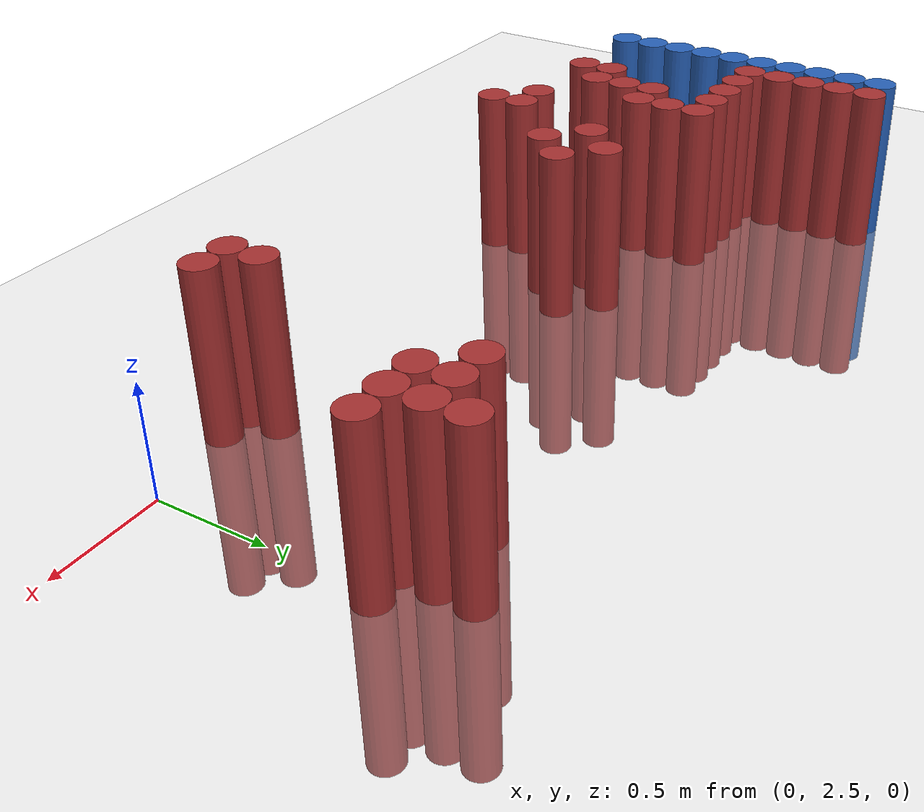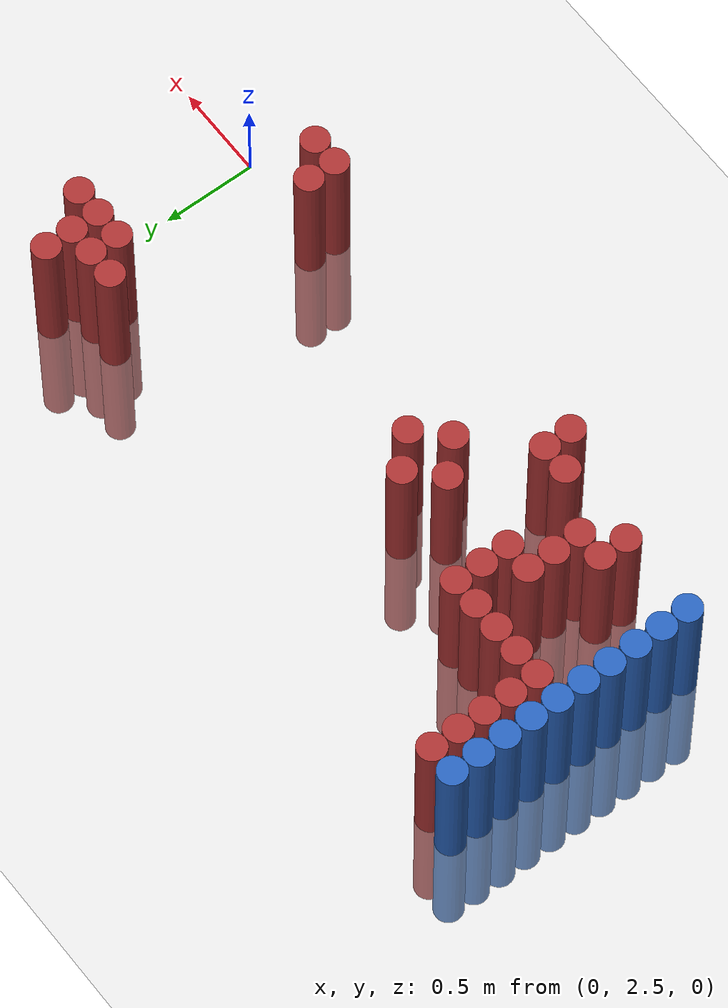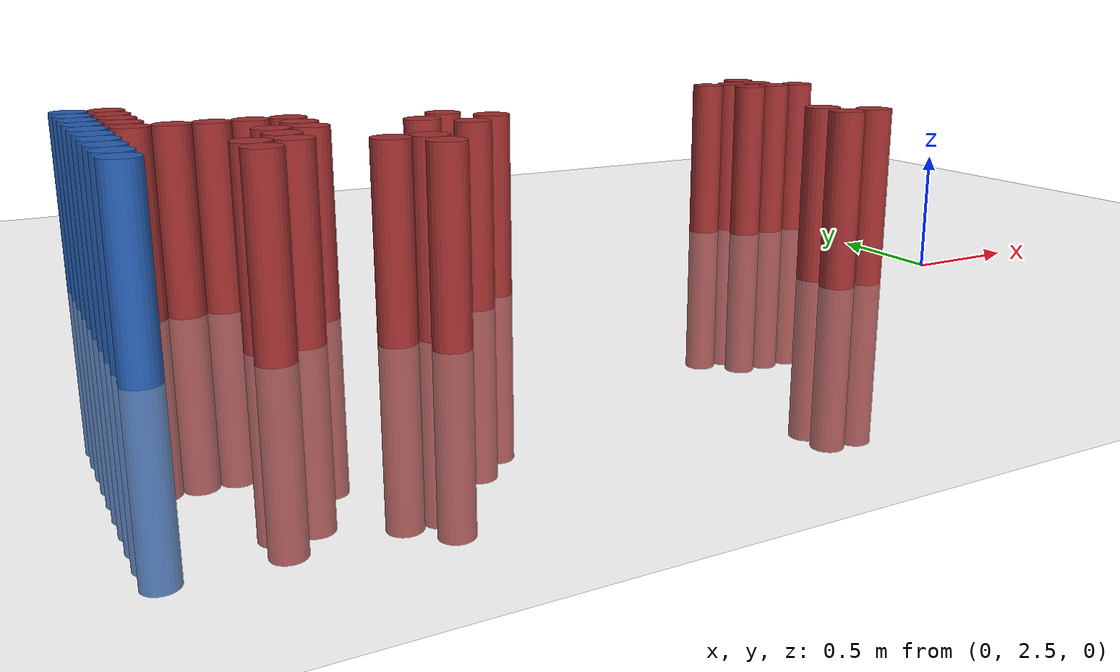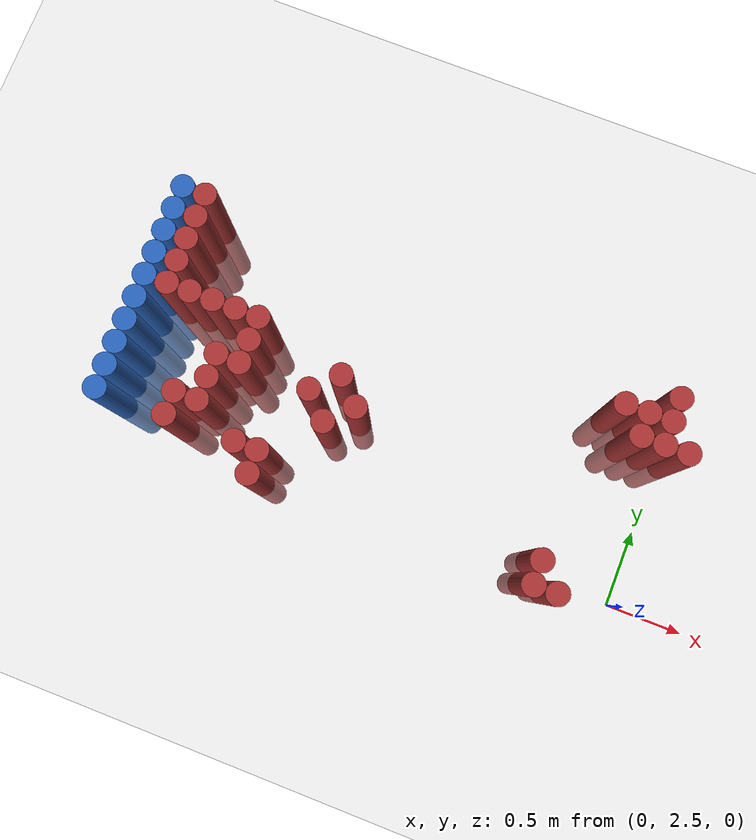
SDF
<sdf version="1.6">
 <world name="default">
  <model name="ground_plane">
   <static>1</static>
   <link name="link">
    <collision name="collision">
     <geometry><plane><normal>0 0 1</normal><size>100 100</size></plane></geometry>
     <surface><friction><ode><mu>100</mu><mu2>50</mu2></ode></friction></surface>
    </collision>
    <visual name="visual">
     <cast_shadows>0</cast_shadows>
     <geometry><plane><normal>0 0 1</normal><size>100 100</size></plane></geometry>
     <material>
      <script><uri>file://media/materials/scripts/gazebo.material</uri><name>Gazebo/Grey</name></script>
     </material>
    </visual>
   </link>
  </model>
  <model name="unit_cylinder_149">
   <static>1</static>
   <pose>-3.425000 2.575000 0.000000 0.000000 0.000000 0.000000</pose>
   <link name="link">
    <inertial>
     <mass>1</mass>
     <inertia><ixx>0.145833</ixx><ixy>0</ixy><ixz>0</ixz><iyy>0.145833</iyy><iyz>0</iyz><izz>0.125</izz></inertia>
    </inertial>
    <collision name="collision">
     <geometry><cylinder><radius>0.075000</radius><length>1.5</length></cylinder></geometry>
    </collision>
    <visual name="visual">
     <geometry><cylinder><radius>0.075000</radius><length>1.5</length></cylinder></geometry>
     <material>
      <ambient>0.152000 0.379000 0.720000 1</ambient>
      <diffuse>0.152000 0.379000 0.720000 1</diffuse>
     </material>
     <material>
      <script><name>Gazebo/Grey</name><uri>file://media/materials/scripts/gazebo.material</uri></script>
     </material>
    </visual>
   </link>
  </model>
  <model name="unit_cylinder_151">
   <static>1</static>
   <pose>-3.425000 2.725000 0.000000 0.000000 0.000000 0.000000</pose>
   <link name="link">
    <inertial>
     <mass>1</mass>
     <inertia><ixx>0.145833</ixx><ixy>0</ixy><ixz>0</ixz><iyy>0.145833</iyy><iyz>0</iyz><izz>0.125</izz></inertia>
    </inertial>
    <collision name="collision">
     <geometry><cylinder><radius>0.075000</radius><length>1.5</length></cylinder></geometry>
    </collision>
    <visual name="visual">
     <geometry><cylinder><radius>0.075000</radius><length>1.5</length></cylinder></geometry>
     <material>
      <ambient>0.152000 0.379000 0.720000 1</ambient>
      <diffuse>0.152000 0.379000 0.720000 1</diffuse>
     </material>
     <material>
      <script><name>Gazebo/Grey</name><uri>file://media/materials/scripts/gazebo.material</uri></script>
     </material>
    </visual>
   </link>
  </model>
  <model name="unit_cylinder_153">
   <static>1</static>
   <pose>-3.425000 2.875000 0.000000 0.000000 0.000000 0.000000</pose>
   <link name="link">
    <inertial>
     <mass>1</mass>
     <inertia><ixx>0.145833</ixx><ixy>0</ixy><ixz>0</ixz><iyy>0.145833</iyy><iyz>0</iyz><izz>0.125</izz></inertia>
    </inertial>
    <collision name="collision">
     <geometry><cylinder><radius>0.075000</radius><length>1.5</length></cylinder></geometry>
    </collision>
    <visual name="visual">
     <geometry><cylinder><radius>0.075000</radius><length>1.5</length></cylinder></geometry>
     <material>
      <ambient>0.152000 0.379000 0.720000 1</ambient>
      <diffuse>0.152000 0.379000 0.720000 1</diffuse>
     </material>
     <material>
      <script><name>Gazebo/Grey</name><uri>file://media/materials/scripts/gazebo.material</uri></script>
     </material>
    </visual>
   </link>
  </model>
  <model name="unit_cylinder_155">
   <static>1</static>
   <pose>-3.425000 3.025000 0.000000 0.000000 0.000000 0.000000</pose>
   <link name="link">
    <inertial>
     <mass>1</mass>
     <inertia><ixx>0.145833</ixx><ixy>0</ixy><ixz>0</ixz><iyy>0.145833</iyy><iyz>0</iyz><izz>0.125</izz></inertia>
    </inertial>
    <collision name="collision">
     <geometry><cylinder><radius>0.075000</radius><length>1.5</length></cylinder></geometry>
    </collision>
    <visual name="visual">
     <geometry><cylinder><radius>0.075000</radius><length>1.5</length></cylinder></geometry>
     <material>
      <ambient>0.152000 0.379000 0.720000 1</ambient>
      <diffuse>0.152000 0.379000 0.720000 1</diffuse>
     </material>
     <material>
      <script><name>Gazebo/Grey</name><uri>file://media/materials/scripts/gazebo.material</uri></script>
     </material>
    </visual>
   </link>
  </model>
  <model name="unit_cylinder_157">
   <static>1</static>
   <pose>-3.425000 3.175000 0.000000 0.000000 0.000000 0.000000</pose>
   <link name="link">
    <inertial>
     <mass>1</mass>
     <inertia><ixx>0.145833</ixx><ixy>0</ixy><ixz>0</ixz><iyy>0.145833</iyy><iyz>0</iyz><izz>0.125</izz></inertia>
    </inertial>
    <collision name="collision">
     <geometry><cylinder><radius>0.075000</radius><length>1.5</length></cylinder></geometry>
    </collision>
    <visual name="visual">
     <geometry><cylinder><radius>0.075000</radius><length>1.5</length></cylinder></geometry>
     <material>
      <ambient>0.152000 0.379000 0.720000 1</ambient>
      <diffuse>0.152000 0.379000 0.720000 1</diffuse>
     </material>
     <material>
      <script><name>Gazebo/Grey</name><uri>file://media/materials/scripts/gazebo.material</uri></script>
     </material>
    </visual>
   </link>
  </model>
  <model name="unit_cylinder_159">
   <static>1</static>
   <pose>-3.425000 3.325000 0.000000 0.000000 0.000000 0.000000</pose>
   <link name="link">
    <inertial>
     <mass>1</mass>
     <inertia><ixx>0.145833</ixx><ixy>0</ixy><ixz>0</ixz><iyy>0.145833</iyy><iyz>0</iyz><izz>0.125</izz></inertia>
    </inertial>
    <collision name="collision">
     <geometry><cylinder><radius>0.075000</radius><length>1.5</length></cylinder></geometry>
    </collision>
    <visual name="visual">
     <geometry><cylinder><radius>0.075000</radius><length>1.5</length></cylinder></geometry>
     <material>
      <ambient>0.152000 0.379000 0.720000 1</ambient>
      <diffuse>0.152000 0.379000 0.720000 1</diffuse>
     </material>
     <material>
      <script><name>Gazebo/Grey</name><uri>file://media/materials/scripts/gazebo.material</uri></script>
     </material>
    </visual>
   </link>
  </model>
  <model name="unit_cylinder_161">
   <static>1</static>
   <pose>-3.425000 3.475000 0.000000 0.000000 0.000000 0.000000</pose>
   <link name="link">
    <inertial>
     <mass>1</mass>
     <inertia><ixx>0.145833</ixx><ixy>0</ixy><ixz>0</ixz><iyy>0.145833</iyy><iyz>0</iyz><izz>0.125</izz></inertia>
    </inertial>
    <collision name="collision">
     <geometry><cylinder><radius>0.075000</radius><length>1.5</length></cylinder></geometry>
    </collision>
    <visual name="visual">
     <geometry><cylinder><radius>0.075000</radius><length>1.5</length></cylinder></geometry>
     <material>
      <ambient>0.152000 0.379000 0.720000 1</ambient>
      <diffuse>0.152000 0.379000 0.720000 1</diffuse>
     </material>
     <material>
      <script><name>Gazebo/Grey</name><uri>file://media/materials/scripts/gazebo.material</uri></script>
     </material>
    </visual>
   </link>
  </model>
  <model name="unit_cylinder_163">
   <static>1</static>
   <pose>-3.425000 3.625000 0.000000 0.000000 0.000000 0.000000</pose>
   <link name="link">
    <inertial>
     <mass>1</mass>
     <inertia><ixx>0.145833</ixx><ixy>0</ixy><ixz>0</ixz><iyy>0.145833</iyy><iyz>0</iyz><izz>0.125</izz></inertia>
    </inertial>
    <collision name="collision">
     <geometry><cylinder><radius>0.075000</radius><length>1.5</length></cylinder></geometry>
    </collision>
    <visual name="visual">
     <geometry><cylinder><radius>0.075000</radius><length>1.5</length></cylinder></geometry>
     <material>
      <ambient>0.152000 0.379000 0.720000 1</ambient>
      <diffuse>0.152000 0.379000 0.720000 1</diffuse>
     </material>
     <material>
      <script><name>Gazebo/Grey</name><uri>file://media/materials/scripts/gazebo.material</uri></script>
     </material>
    </visual>
   </link>
  </model>
  <model name="unit_cylinder_165">
   <static>1</static>
   <pose>-3.425000 3.775000 0.000000 0.000000 0.000000 0.000000</pose>
   <link name="link">
    <inertial>
     <mass>1</mass>
     <inertia><ixx>0.145833</ixx><ixy>0</ixy><ixz>0</ixz><iyy>0.145833</iyy><iyz>0</iyz><izz>0.125</izz></inertia>
    </inertial>
    <collision name="collision">
     <geometry><cylinder><radius>0.075000</radius><length>1.5</length></cylinder></geometry>
    </collision>
    <visual name="visual">
     <geometry><cylinder><radius>0.075000</radius><length>1.5</length></cylinder></geometry>
     <material>
      <ambient>0.152000 0.379000 0.720000 1</ambient>
      <diffuse>0.152000 0.379000 0.720000 1</diffuse>
     </material>
     <material>
      <script><name>Gazebo/Grey</name><uri>file://media/materials/scripts/gazebo.material</uri></script>
     </material>
    </visual>
   </link>
  </model>
  <model name="unit_cylinder_167">
   <static>1</static>
   <pose>-3.425000 3.925000 0.000000 0.000000 0.000000 0.000000</pose>
   <link name="link">
    <inertial>
     <mass>1</mass>
     <inertia><ixx>0.145833</ixx><ixy>0</ixy><ixz>0</ixz><iyy>0.145833</iyy><iyz>0</iyz><izz>0.125</izz></inertia>
    </inertial>
    <collision name="collision">
     <geometry><cylinder><radius>0.075000</radius><length>1.5</length></cylinder></geometry>
    </collision>
    <visual name="visual">
     <geometry><cylinder><radius>0.075000</radius><length>1.5</length></cylinder></geometry>
     <material>
      <ambient>0.152000 0.379000 0.720000 1</ambient>
      <diffuse>0.152000 0.379000 0.720000 1</diffuse>
     </material>
     <material>
      <script><name>Gazebo/Grey</name><uri>file://media/materials/scripts/gazebo.material</uri></script>
     </material>
    </visual>
   </link>
  </model>
  <model name="unit_cylinder_238">
   <static>1</static>
   <pose>-3.425000 2.575000 0.000000 0.000000 0.000000 0.000000</pose>
   <link name="link">
    <inertial>
     <mass>1</mass>
     <inertia><ixx>0.145833</ixx><ixy>0</ixy><ixz>0</ixz><iyy>0.145833</iyy><iyz>0</iyz><izz>0.125</izz></inertia>
    </inertial>
    <collision name="collision">
     <geometry><cylinder><radius>0.075000</radius><length>1.5</length></cylinder></geometry>
    </collision>
    <visual name="visual">
     <geometry><cylinder><radius>0.075000</radius><length>1.5</length></cylinder></geometry>
     <material>
      <ambient>0.152000 0.379000 0.720000 1</ambient>
      <diffuse>0.152000 0.379000 0.720000 1</diffuse>
     </material>
     <material>
      <script><name>Gazebo/Grey</name><uri>file://media/materials/scripts/gazebo.material</uri></script>
     </material>
    </visual>
   </link>
  </model>
  <model name="unit_cylinder_239">
   <static>1</static>
   <pose>-3.425000 2.725000 0.000000 0.000000 0.000000 0.000000</pose>
   <link name="link">
    <inertial>
     <mass>1</mass>
     <inertia><ixx>0.145833</ixx><ixy>0</ixy><ixz>0</ixz><iyy>0.145833</iyy><iyz>0</iyz><izz>0.125</izz></inertia>
    </inertial>
    <collision name="collision">
     <geometry><cylinder><radius>0.075000</radius><length>1.5</length></cylinder></geometry>
    </collision>
    <visual name="visual">
     <geometry><cylinder><radius>0.075000</radius><length>1.5</length></cylinder></geometry>
     <material>
      <ambient>0.152000 0.379000 0.720000 1</ambient>
      <diffuse>0.152000 0.379000 0.720000 1</diffuse>
     </material>
     <material>
      <script><name>Gazebo/Grey</name><uri>file://media/materials/scripts/gazebo.material</uri></script>
     </material>
    </visual>
   </link>
  </model>
  <model name="unit_cylinder_240">
   <static>1</static>
   <pose>-3.425000 2.875000 0.000000 0.000000 0.000000 0.000000</pose>
   <link name="link">
    <inertial>
     <mass>1</mass>
     <inertia><ixx>0.145833</ixx><ixy>0</ixy><ixz>0</ixz><iyy>0.145833</iyy><iyz>0</iyz><izz>0.125</izz></inertia>
    </inertial>
    <collision name="collision">
     <geometry><cylinder><radius>0.075000</radius><length>1.5</length></cylinder></geometry>
    </collision>
    <visual name="visual">
     <geometry><cylinder><radius>0.075000</radius><length>1.5</length></cylinder></geometry>
     <material>
      <ambient>0.152000 0.379000 0.720000 1</ambient>
      <diffuse>0.152000 0.379000 0.720000 1</diffuse>
     </material>
     <material>
      <script><name>Gazebo/Grey</name><uri>file://media/materials/scripts/gazebo.material</uri></script>
     </material>
    </visual>
   </link>
  </model>
  <model name="unit_cylinder_241">
   <static>1</static>
   <pose>-3.425000 3.025000 0.000000 0.000000 0.000000 0.000000</pose>
   <link name="link">
    <inertial>
     <mass>1</mass>
     <inertia><ixx>0.145833</ixx><ixy>0</ixy><ixz>0</ixz><iyy>0.145833</iyy><iyz>0</iyz><izz>0.125</izz></inertia>
    </inertial>
    <collision name="collision">
     <geometry><cylinder><radius>0.075000</radius><length>1.5</length></cylinder></geometry>
    </collision>
    <visual name="visual">
     <geometry><cylinder><radius>0.075000</radius><length>1.5</length></cylinder></geometry>
     <material>
      <ambient>0.152000 0.379000 0.720000 1</ambient>
      <diffuse>0.152000 0.379000 0.720000 1</diffuse>
     </material>
     <material>
      <script><name>Gazebo/Grey</name><uri>file://media/materials/scripts/gazebo.material</uri></script>
     </material>
    </visual>
   </link>
  </model>
  <model name="unit_cylinder_242">
   <static>1</static>
   <pose>-3.425000 3.175000 0.000000 0.000000 0.000000 0.000000</pose>
   <link name="link">
    <inertial>
     <mass>1</mass>
     <inertia><ixx>0.145833</ixx><ixy>0</ixy><ixz>0</ixz><iyy>0.145833</iyy><iyz>0</iyz><izz>0.125</izz></inertia>
    </inertial>
    <collision name="collision">
     <geometry><cylinder><radius>0.075000</radius><length>1.5</length></cylinder></geometry>
    </collision>
    <visual name="visual">
     <geometry><cylinder><radius>0.075000</radius><length>1.5</length></cylinder></geometry>
     <material>
      <ambient>0.152000 0.379000 0.720000 1</ambient>
      <diffuse>0.152000 0.379000 0.720000 1</diffuse>
     </material>
     <material>
      <script><name>Gazebo/Grey</name><uri>file://media/materials/scripts/gazebo.material</uri></script>
     </material>
    </visual>
   </link>
  </model>
  <model name="unit_cylinder_243">
   <static>1</static>
   <pose>-3.425000 3.325000 0.000000 0.000000 0.000000 0.000000</pose>
   <link name="link">
    <inertial>
     <mass>1</mass>
     <inertia><ixx>0.145833</ixx><ixy>0</ixy><ixz>0</ixz><iyy>0.145833</iyy><iyz>0</iyz><izz>0.125</izz></inertia>
    </inertial>
    <collision name="collision">
     <geometry><cylinder><radius>0.075000</radius><length>1.5</length></cylinder></geometry>
    </collision>
    <visual name="visual">
     <geometry><cylinder><radius>0.075000</radius><length>1.5</length></cylinder></geometry>
     <material>
      <ambient>0.152000 0.379000 0.720000 1</ambient>
      <diffuse>0.152000 0.379000 0.720000 1</diffuse>
     </material>
     <material>
      <script><name>Gazebo/Grey</name><uri>file://media/materials/scripts/gazebo.material</uri></script>
     </material>
    </visual>
   </link>
  </model>
  <model name="unit_cylinder_244">
   <static>1</static>
   <pose>-3.425000 3.475000 0.000000 0.000000 0.000000 0.000000</pose>
   <link name="link">
    <inertial>
     <mass>1</mass>
     <inertia><ixx>0.145833</ixx><ixy>0</ixy><ixz>0</ixz><iyy>0.145833</iyy><iyz>0</iyz><izz>0.125</izz></inertia>
    </inertial>
    <collision name="collision">
     <geometry><cylinder><radius>0.075000</radius><length>1.5</length></cylinder></geometry>
    </collision>
    <visual name="visual">
     <geometry><cylinder><radius>0.075000</radius><length>1.5</length></cylinder></geometry>
     <material>
      <ambient>0.152000 0.379000 0.720000 1</ambient>
      <diffuse>0.152000 0.379000 0.720000 1</diffuse>
     </material>
     <material>
      <script><name>Gazebo/Grey</name><uri>file://media/materials/scripts/gazebo.material</uri></script>
     </material>
    </visual>
   </link>
  </model>
  <model name="unit_cylinder_245">
   <static>1</static>
   <pose>-3.425000 3.625000 0.000000 0.000000 0.000000 0.000000</pose>
   <link name="link">
    <inertial>
     <mass>1</mass>
     <inertia><ixx>0.145833</ixx><ixy>0</ixy><ixz>0</ixz><iyy>0.145833</iyy><iyz>0</iyz><izz>0.125</izz></inertia>
    </inertial>
    <collision name="collision">
     <geometry><cylinder><radius>0.075000</radius><length>1.5</length></cylinder></geometry>
    </collision>
    <visual name="visual">
     <geometry><cylinder><radius>0.075000</radius><length>1.5</length></cylinder></geometry>
     <material>
      <ambient>0.152000 0.379000 0.720000 1</ambient>
      <diffuse>0.152000 0.379000 0.720000 1</diffuse>
     </material>
     <material>
      <script><name>Gazebo/Grey</name><uri>file://media/materials/scripts/gazebo.material</uri></script>
     </material>
    </visual>
   </link>
  </model>
  <model name="unit_cylinder_246">
   <static>1</static>
   <pose>-3.425000 3.775000 0.000000 0.000000 0.000000 0.000000</pose>
   <link name="link">
    <inertial>
     <mass>1</mass>
     <inertia><ixx>0.145833</ixx><ixy>0</ixy><ixz>0</ixz><iyy>0.145833</iyy><iyz>0</iyz><izz>0.125</izz></inertia>
    </inertial>
    <collision name="collision">
     <geometry><cylinder><radius>0.075000</radius><length>1.5</length></cylinder></geometry>
    </collision>
    <visual name="visual">
     <geometry><cylinder><radius>0.075000</radius><length>1.5</length></cylinder></geometry>
     <material>
      <ambient>0.152000 0.379000 0.720000 1</ambient>
      <diffuse>0.152000 0.379000 0.720000 1</diffuse>
     </material>
     <material>
      <script><name>Gazebo/Grey</name><uri>file://media/materials/scripts/gazebo.material</uri></script>
     </material>
    </visual>
   </link>
  </model>
  <model name="unit_cylinder_247">
   <static>1</static>
   <pose>-3.425000 3.925000 0.000000 0.000000 0.000000 0.000000</pose>
   <link name="link">
    <inertial>
     <mass>1</mass>
     <inertia><ixx>0.145833</ixx><ixy>0</ixy><ixz>0</ixz><iyy>0.145833</iyy><iyz>0</iyz><izz>0.125</izz></inertia>
    </inertial>
    <collision name="collision">
     <geometry><cylinder><radius>0.075000</radius><length>1.5</length></cylinder></geometry>
    </collision>
    <visual name="visual">
     <geometry><cylinder><radius>0.075000</radius><length>1.5</length></cylinder></geometry>
     <material>
      <ambient>0.152000 0.379000 0.720000 1</ambient>
      <diffuse>0.152000 0.379000 0.720000 1</diffuse>
     </material>
     <material>
      <script><name>Gazebo/Grey</name><uri>file://media/materials/scripts/gazebo.material</uri></script>
     </material>
    </visual>
   </link>
  </model>
  <model name="unit_cylinder_275">
   <static>1</static>
   <pose>-3.275000 3.325000 0.000000 0.000000 0.000000 0.000000</pose>
   <link name="link">
    <inertial>
     <mass>1</mass>
     <inertia><ixx>0.145833</ixx><ixy>0</ixy><ixz>0</ixz><iyy>0.145833</iyy><iyz>0</iyz><izz>0.125</izz></inertia>
    </inertial>
    <collision name="collision">
     <geometry><cylinder><radius>0.075000</radius><length>1.5</length></cylinder></geometry>
    </collision>
    <visual name="visual">
     <geometry><cylinder><radius>0.075000</radius><length>1.5</length></cylinder></geometry>
     <material>
      <ambient>0.648000 0.192000 0.192000 1</ambient>
      <diffuse>0.648000 0.192000 0.192000 1</diffuse>
     </material>
     <material>
      <script><name>Gazebo/Grey</name><uri>file://media/materials/scripts/gazebo.material</uri></script>
     </material>
    </visual>
   </link>
  </model>
  <model name="unit_cylinder_276">
   <static>1</static>
   <pose>-3.275000 3.475000 0.000000 0.000000 0.000000 0.000000</pose>
   <link name="link">
    <inertial>
     <mass>1</mass>
     <inertia><ixx>0.145833</ixx><ixy>0</ixy><ixz>0</ixz><iyy>0.145833</iyy><iyz>0</iyz><izz>0.125</izz></inertia>
    </inertial>
    <collision name="collision">
     <geometry><cylinder><radius>0.075000</radius><length>1.5</length></cylinder></geometry>
    </collision>
    <visual name="visual">
     <geometry><cylinder><radius>0.075000</radius><length>1.5</length></cylinder></geometry>
     <material>
      <ambient>0.648000 0.192000 0.192000 1</ambient>
      <diffuse>0.648000 0.192000 0.192000 1</diffuse>
     </material>
     <material>
      <script><name>Gazebo/Grey</name><uri>file://media/materials/scripts/gazebo.material</uri></script>
     </material>
    </visual>
   </link>
  </model>
  <model name="unit_cylinder_277">
   <static>1</static>
   <pose>-3.275000 3.625000 0.000000 0.000000 0.000000 0.000000</pose>
   <link name="link">
    <inertial>
     <mass>1</mass>
     <inertia><ixx>0.145833</ixx><ixy>0</ixy><ixz>0</ixz><iyy>0.145833</iyy><iyz>0</iyz><izz>0.125</izz></inertia>
    </inertial>
    <collision name="collision">
     <geometry><cylinder><radius>0.075000</radius><length>1.5</length></cylinder></geometry>
    </collision>
    <visual name="visual">
     <geometry><cylinder><radius>0.075000</radius><length>1.5</length></cylinder></geometry>
     <material>
      <ambient>0.648000 0.192000 0.192000 1</ambient>
      <diffuse>0.648000 0.192000 0.192000 1</diffuse>
     </material>
     <material>
      <script><name>Gazebo/Grey</name><uri>file://media/materials/scripts/gazebo.material</uri></script>
     </material>
    </visual>
   </link>
  </model>
  <model name="unit_cylinder_278">
   <static>1</static>
   <pose>-3.275000 3.775000 0.000000 0.000000 0.000000 0.000000</pose>
   <link name="link">
    <inertial>
     <mass>1</mass>
     <inertia><ixx>0.145833</ixx><ixy>0</ixy><ixz>0</ixz><iyy>0.145833</iyy><iyz>0</iyz><izz>0.125</izz></inertia>
    </inertial>
    <collision name="collision">
     <geometry><cylinder><radius>0.075000</radius><length>1.5</length></cylinder></geometry>
    </collision>
    <visual name="visual">
     <geometry><cylinder><radius>0.075000</radius><length>1.5</length></cylinder></geometry>
     <material>
      <ambient>0.648000 0.192000 0.192000 1</ambient>
      <diffuse>0.648000 0.192000 0.192000 1</diffuse>
     </material>
     <material>
      <script><name>Gazebo/Grey</name><uri>file://media/materials/scripts/gazebo.material</uri></script>
     </material>
    </visual>
   </link>
  </model>
  <model name="unit_cylinder_279">
   <static>1</static>
   <pose>-3.275000 3.925000 0.000000 0.000000 0.000000 0.000000</pose>
   <link name="link">
    <inertial>
     <mass>1</mass>
     <inertia><ixx>0.145833</ixx><ixy>0</ixy><ixz>0</ixz><iyy>0.145833</iyy><iyz>0</iyz><izz>0.125</izz></inertia>
    </inertial>
    <collision name="collision">
     <geometry><cylinder><radius>0.075000</radius><length>1.5</length></cylinder></geometry>
    </collision>
    <visual name="visual">
     <geometry><cylinder><radius>0.075000</radius><length>1.5</length></cylinder></geometry>
     <material>
      <ambient>0.648000 0.192000 0.192000 1</ambient>
      <diffuse>0.648000 0.192000 0.192000 1</diffuse>
     </material>
     <material>
      <script><name>Gazebo/Grey</name><uri>file://media/materials/scripts/gazebo.material</uri></script>
     </material>
    </visual>
   </link>
  </model>
  <model name="unit_cylinder_291">
   <static>1</static>
   <pose>-3.125000 3.325000 0.000000 0.000000 0.000000 0.000000</pose>
   <link name="link">
    <inertial>
     <mass>1</mass>
     <inertia><ixx>0.145833</ixx><ixy>0</ixy><ixz>0</ixz><iyy>0.145833</iyy><iyz>0</iyz><izz>0.125</izz></inertia>
    </inertial>
    <collision name="collision">
     <geometry><cylinder><radius>0.075000</radius><length>1.5</length></cylinder></geometry>
    </collision>
    <visual name="visual">
     <geometry><cylinder><radius>0.075000</radius><length>1.5</length></cylinder></geometry>
     <material>
      <ambient>0.648000 0.192000 0.192000 1</ambient>
      <diffuse>0.648000 0.192000 0.192000 1</diffuse>
     </material>
     <material>
      <script><name>Gazebo/Grey</name><uri>file://media/materials/scripts/gazebo.material</uri></script>
     </material>
    </visual>
   </link>
  </model>
  <model name="unit_cylinder_299">
   <static>1</static>
   <pose>-2.975000 2.575000 0.000000 0.000000 0.000000 0.000000</pose>
   <link name="link">
    <inertial>
     <mass>1</mass>
     <inertia><ixx>0.145833</ixx><ixy>0</ixy><ixz>0</ixz><iyy>0.145833</iyy><iyz>0</iyz><izz>0.125</izz></inertia>
    </inertial>
    <collision name="collision">
     <geometry><cylinder><radius>0.075000</radius><length>1.5</length></cylinder></geometry>
    </collision>
    <visual name="visual">
     <geometry><cylinder><radius>0.075000</radius><length>1.5</length></cylinder></geometry>
     <material>
      <ambient>0.648000 0.192000 0.192000 1</ambient>
      <diffuse>0.648000 0.192000 0.192000 1</diffuse>
     </material>
     <material>
      <script><name>Gazebo/Grey</name><uri>file://media/materials/scripts/gazebo.material</uri></script>
     </material>
    </visual>
   </link>
  </model>
  <model name="unit_cylinder_300">
   <static>1</static>
   <pose>-2.975000 2.725000 0.000000 0.000000 0.000000 0.000000</pose>
   <link name="link">
    <inertial>
     <mass>1</mass>
     <inertia><ixx>0.145833</ixx><ixy>0</ixy><ixz>0</ixz><iyy>0.145833</iyy><iyz>0</iyz><izz>0.125</izz></inertia>
    </inertial>
    <collision name="collision">
     <geometry><cylinder><radius>0.075000</radius><length>1.5</length></cylinder></geometry>
    </collision>
    <visual name="visual">
     <geometry><cylinder><radius>0.075000</radius><length>1.5</length></cylinder></geometry>
     <material>
      <ambient>0.648000 0.192000 0.192000 1</ambient>
      <diffuse>0.648000 0.192000 0.192000 1</diffuse>
     </material>
     <material>
      <script><name>Gazebo/Grey</name><uri>file://media/materials/scripts/gazebo.material</uri></script>
     </material>
    </visual>
   </link>
  </model>
  <model name="unit_cylinder_301">
   <static>1</static>
   <pose>-2.975000 3.325000 0.000000 0.000000 0.000000 0.000000</pose>
   <link name="link">
    <inertial>
     <mass>1</mass>
     <inertia><ixx>0.145833</ixx><ixy>0</ixy><ixz>0</ixz><iyy>0.145833</iyy><iyz>0</iyz><izz>0.125</izz></inertia>
    </inertial>
    <collision name="collision">
     <geometry><cylinder><radius>0.075000</radius><length>1.5</length></cylinder></geometry>
    </collision>
    <visual name="visual">
     <geometry><cylinder><radius>0.075000</radius><length>1.5</length></cylinder></geometry>
     <material>
      <ambient>0.648000 0.192000 0.192000 1</ambient>
      <diffuse>0.648000 0.192000 0.192000 1</diffuse>
     </material>
     <material>
      <script><name>Gazebo/Grey</name><uri>file://media/materials/scripts/gazebo.material</uri></script>
     </material>
    </visual>
   </link>
  </model>
  <model name="unit_cylinder_310">
   <static>1</static>
   <pose>-2.825000 2.725000 0.000000 0.000000 0.000000 0.000000</pose>
   <link name="link">
    <inertial>
     <mass>1</mass>
     <inertia><ixx>0.145833</ixx><ixy>0</ixy><ixz>0</ixz><iyy>0.145833</iyy><iyz>0</iyz><izz>0.125</izz></inertia>
    </inertial>
    <collision name="collision">
     <geometry><cylinder><radius>0.075000</radius><length>1.5</length></cylinder></geometry>
    </collision>
    <visual name="visual">
     <geometry><cylinder><radius>0.075000</radius><length>1.5</length></cylinder></geometry>
     <material>
      <ambient>0.648000 0.192000 0.192000 1</ambient>
      <diffuse>0.648000 0.192000 0.192000 1</diffuse>
     </material>
     <material>
      <script><name>Gazebo/Grey</name><uri>file://media/materials/scripts/gazebo.material</uri></script>
     </material>
    </visual>
   </link>
  </model>
  <model name="unit_cylinder_311">
   <static>1</static>
   <pose>-2.825000 2.875000 0.000000 0.000000 0.000000 0.000000</pose>
   <link name="link">
    <inertial>
     <mass>1</mass>
     <inertia><ixx>0.145833</ixx><ixy>0</ixy><ixz>0</ixz><iyy>0.145833</iyy><iyz>0</iyz><izz>0.125</izz></inertia>
    </inertial>
    <collision name="collision">
     <geometry><cylinder><radius>0.075000</radius><length>1.5</length></cylinder></geometry>
    </collision>
    <visual name="visual">
     <geometry><cylinder><radius>0.075000</radius><length>1.5</length></cylinder></geometry>
     <material>
      <ambient>0.648000 0.192000 0.192000 1</ambient>
      <diffuse>0.648000 0.192000 0.192000 1</diffuse>
     </material>
     <material>
      <script><name>Gazebo/Grey</name><uri>file://media/materials/scripts/gazebo.material</uri></script>
     </material>
    </visual>
   </link>
  </model>
  <model name="unit_cylinder_312">
   <static>1</static>
   <pose>-2.825000 3.025000 0.000000 0.000000 0.000000 0.000000</pose>
   <link name="link">
    <inertial>
     <mass>1</mass>
     <inertia><ixx>0.145833</ixx><ixy>0</ixy><ixz>0</ixz><iyy>0.145833</iyy><iyz>0</iyz><izz>0.125</izz></inertia>
    </inertial>
    <collision name="collision">
     <geometry><cylinder><radius>0.075000</radius><length>1.5</length></cylinder></geometry>
    </collision>
    <visual name="visual">
     <geometry><cylinder><radius>0.075000</radius><length>1.5</length></cylinder></geometry>
     <material>
      <ambient>0.648000 0.192000 0.192000 1</ambient>
      <diffuse>0.648000 0.192000 0.192000 1</diffuse>
     </material>
     <material>
      <script><name>Gazebo/Grey</name><uri>file://media/materials/scripts/gazebo.material</uri></script>
     </material>
    </visual>
   </link>
  </model>
  <model name="unit_cylinder_313">
   <static>1</static>
   <pose>-2.825000 3.325000 0.000000 0.000000 0.000000 0.000000</pose>
   <link name="link">
    <inertial>
     <mass>1</mass>
     <inertia><ixx>0.145833</ixx><ixy>0</ixy><ixz>0</ixz><iyy>0.145833</iyy><iyz>0</iyz><izz>0.125</izz></inertia>
    </inertial>
    <collision name="collision">
     <geometry><cylinder><radius>0.075000</radius><length>1.5</length></cylinder></geometry>
    </collision>
    <visual name="visual">
     <geometry><cylinder><radius>0.075000</radius><length>1.5</length></cylinder></geometry>
     <material>
      <ambient>0.648000 0.192000 0.192000 1</ambient>
      <diffuse>0.648000 0.192000 0.192000 1</diffuse>
     </material>
     <material>
      <script><name>Gazebo/Grey</name><uri>file://media/materials/scripts/gazebo.material</uri></script>
     </material>
    </visual>
   </link>
  </model>
  <model name="unit_cylinder_317">
   <static>1</static>
   <pose>-2.675000 3.025000 0.000000 0.000000 0.000000 0.000000</pose>
   <link name="link">
    <inertial>
     <mass>1</mass>
     <inertia><ixx>0.145833</ixx><ixy>0</ixy><ixz>0</ixz><iyy>0.145833</iyy><iyz>0</iyz><izz>0.125</izz></inertia>
    </inertial>
    <collision name="collision">
     <geometry><cylinder><radius>0.075000</radius><length>1.5</length></cylinder></geometry>
    </collision>
    <visual name="visual">
     <geometry><cylinder><radius>0.075000</radius><length>1.5</length></cylinder></geometry>
     <material>
      <ambient>0.648000 0.192000 0.192000 1</ambient>
      <diffuse>0.648000 0.192000 0.192000 1</diffuse>
     </material>
     <material>
      <script><name>Gazebo/Grey</name><uri>file://media/materials/scripts/gazebo.material</uri></script>
     </material>
    </visual>
   </link>
  </model>
  <model name="unit_cylinder_318">
   <static>1</static>
   <pose>-2.675000 3.175000 0.000000 0.000000 0.000000 0.000000</pose>
   <link name="link">
    <inertial>
     <mass>1</mass>
     <inertia><ixx>0.145833</ixx><ixy>0</ixy><ixz>0</ixz><iyy>0.145833</iyy><iyz>0</iyz><izz>0.125</izz></inertia>
    </inertial>
    <collision name="collision">
     <geometry><cylinder><radius>0.075000</radius><length>1.5</length></cylinder></geometry>
    </collision>
    <visual name="visual">
     <geometry><cylinder><radius>0.075000</radius><length>1.5</length></cylinder></geometry>
     <material>
      <ambient>0.648000 0.192000 0.192000 1</ambient>
      <diffuse>0.648000 0.192000 0.192000 1</diffuse>
     </material>
     <material>
      <script><name>Gazebo/Grey</name><uri>file://media/materials/scripts/gazebo.material</uri></script>
     </material>
    </visual>
   </link>
  </model>
  <model name="unit_cylinder_319">
   <static>1</static>
   <pose>-2.675000 3.325000 0.000000 0.000000 0.000000 0.000000</pose>
   <link name="link">
    <inertial>
     <mass>1</mass>
     <inertia><ixx>0.145833</ixx><ixy>0</ixy><ixz>0</ixz><iyy>0.145833</iyy><iyz>0</iyz><izz>0.125</izz></inertia>
    </inertial>
    <collision name="collision">
     <geometry><cylinder><radius>0.075000</radius><length>1.5</length></cylinder></geometry>
    </collision>
    <visual name="visual">
     <geometry><cylinder><radius>0.075000</radius><length>1.5</length></cylinder></geometry>
     <material>
      <ambient>0.648000 0.192000 0.192000 1</ambient>
      <diffuse>0.648000 0.192000 0.192000 1</diffuse>
     </material>
     <material>
      <script><name>Gazebo/Grey</name><uri>file://media/materials/scripts/gazebo.material</uri></script>
     </material>
    </visual>
   </link>
  </model>
  <model name="unit_cylinder_322">
   <static>1</static>
   <pose>-2.525000 2.575000 0.000000 0.000000 0.000000 0.000000</pose>
   <link name="link">
    <inertial>
     <mass>1</mass>
     <inertia><ixx>0.145833</ixx><ixy>0</ixy><ixz>0</ixz><iyy>0.145833</iyy><iyz>0</iyz><izz>0.125</izz></inertia>
    </inertial>
    <collision name="collision">
     <geometry><cylinder><radius>0.075000</radius><length>1.5</length></cylinder></geometry>
    </collision>
    <visual name="visual">
     <geometry><cylinder><radius>0.075000</radius><length>1.5</length></cylinder></geometry>
     <material>
      <ambient>0.648000 0.192000 0.192000 1</ambient>
      <diffuse>0.648000 0.192000 0.192000 1</diffuse>
     </material>
     <material>
      <script><name>Gazebo/Grey</name><uri>file://media/materials/scripts/gazebo.material</uri></script>
     </material>
    </visual>
   </link>
  </model>
  <model name="unit_cylinder_328">
   <static>1</static>
   <pose>-2.375000 2.425000 0.000000 0.000000 0.000000 0.000000</pose>
   <link name="link">
    <inertial>
     <mass>1</mass>
     <inertia><ixx>0.145833</ixx><ixy>0</ixy><ixz>0</ixz><iyy>0.145833</iyy><iyz>0</iyz><izz>0.125</izz></inertia>
    </inertial>
    <collision name="collision">
     <geometry><cylinder><radius>0.075000</radius><length>1.5</length></cylinder></geometry>
    </collision>
    <visual name="visual">
     <geometry><cylinder><radius>0.075000</radius><length>1.5</length></cylinder></geometry>
     <material>
      <ambient>0.648000 0.192000 0.192000 1</ambient>
      <diffuse>0.648000 0.192000 0.192000 1</diffuse>
     </material>
     <material>
      <script><name>Gazebo/Grey</name><uri>file://media/materials/scripts/gazebo.material</uri></script>
     </material>
    </visual>
   </link>
  </model>
  <model name="unit_cylinder_329">
   <static>1</static>
   <pose>-2.375000 2.575000 0.000000 0.000000 0.000000 0.000000</pose>
   <link name="link">
    <inertial>
     <mass>1</mass>
     <inertia><ixx>0.145833</ixx><ixy>0</ixy><ixz>0</ixz><iyy>0.145833</iyy><iyz>0</iyz><izz>0.125</izz></inertia>
    </inertial>
    <collision name="collision">
     <geometry><cylinder><radius>0.075000</radius><length>1.5</length></cylinder></geometry>
    </collision>
    <visual name="visual">
     <geometry><cylinder><radius>0.075000</radius><length>1.5</length></cylinder></geometry>
     <material>
      <ambient>0.648000 0.192000 0.192000 1</ambient>
      <diffuse>0.648000 0.192000 0.192000 1</diffuse>
     </material>
     <material>
      <script><name>Gazebo/Grey</name><uri>file://media/materials/scripts/gazebo.material</uri></script>
     </material>
    </visual>
   </link>
  </model>
  <model name="unit_cylinder_337">
   <static>1</static>
   <pose>-2.225000 3.025000 0.000000 0.000000 0.000000 0.000000</pose>
   <link name="link">
    <inertial>
     <mass>1</mass>
     <inertia><ixx>0.145833</ixx><ixy>0</ixy><ixz>0</ixz><iyy>0.145833</iyy><iyz>0</iyz><izz>0.125</izz></inertia>
    </inertial>
    <collision name="collision">
     <geometry><cylinder><radius>0.075000</radius><length>1.5</length></cylinder></geometry>
    </collision>
    <visual name="visual">
     <geometry><cylinder><radius>0.075000</radius><length>1.5</length></cylinder></geometry>
     <material>
      <ambient>0.648000 0.192000 0.192000 1</ambient>
      <diffuse>0.648000 0.192000 0.192000 1</diffuse>
     </material>
     <material>
      <script><name>Gazebo/Grey</name><uri>file://media/materials/scripts/gazebo.material</uri></script>
     </material>
    </visual>
   </link>
  </model>
  <model name="unit_cylinder_345">
   <static>1</static>
   <pose>-2.075000 2.875000 0.000000 0.000000 0.000000 0.000000</pose>
   <link name="link">
    <inertial>
     <mass>1</mass>
     <inertia><ixx>0.145833</ixx><ixy>0</ixy><ixz>0</ixz><iyy>0.145833</iyy><iyz>0</iyz><izz>0.125</izz></inertia>
    </inertial>
    <collision name="collision">
     <geometry><cylinder><radius>0.075000</radius><length>1.5</length></cylinder></geometry>
    </collision>
    <visual name="visual">
     <geometry><cylinder><radius>0.075000</radius><length>1.5</length></cylinder></geometry>
     <material>
      <ambient>0.648000 0.192000 0.192000 1</ambient>
      <diffuse>0.648000 0.192000 0.192000 1</diffuse>
     </material>
     <material>
      <script><name>Gazebo/Grey</name><uri>file://media/materials/scripts/gazebo.material</uri></script>
     </material>
    </visual>
   </link>
  </model>
  <model name="unit_cylinder_346">
   <static>1</static>
   <pose>-2.075000 3.175000 0.000000 0.000000 0.000000 0.000000</pose>
   <link name="link">
    <inertial>
     <mass>1</mass>
     <inertia><ixx>0.145833</ixx><ixy>0</ixy><ixz>0</ixz><iyy>0.145833</iyy><iyz>0</iyz><izz>0.125</izz></inertia>
    </inertial>
    <collision name="collision">
     <geometry><cylinder><radius>0.075000</radius><length>1.5</length></cylinder></geometry>
    </collision>
    <visual name="visual">
     <geometry><cylinder><radius>0.075000</radius><length>1.5</length></cylinder></geometry>
     <material>
      <ambient>0.648000 0.192000 0.192000 1</ambient>
      <diffuse>0.648000 0.192000 0.192000 1</diffuse>
     </material>
     <material>
      <script><name>Gazebo/Grey</name><uri>file://media/materials/scripts/gazebo.material</uri></script>
     </material>
    </visual>
   </link>
  </model>
  <model name="unit_cylinder_358">
   <static>1</static>
   <pose>-1.925000 3.025000 0.000000 0.000000 0.000000 0.000000</pose>
   <link name="link">
    <inertial>
     <mass>1</mass>
     <inertia><ixx>0.145833</ixx><ixy>0</ixy><ixz>0</ixz><iyy>0.145833</iyy><iyz>0</iyz><izz>0.125</izz></inertia>
    </inertial>
    <collision name="collision">
     <geometry><cylinder><radius>0.075000</radius><length>1.5</length></cylinder></geometry>
    </collision>
    <visual name="visual">
     <geometry><cylinder><radius>0.075000</radius><length>1.5</length></cylinder></geometry>
     <material>
      <ambient>0.648000 0.192000 0.192000 1</ambient>
      <diffuse>0.648000 0.192000 0.192000 1</diffuse>
     </material>
     <material>
      <script><name>Gazebo/Grey</name><uri>file://media/materials/scripts/gazebo.material</uri></script>
     </material>
    </visual>
   </link>
  </model>
  <model name="unit_cylinder_405">
   <static>1</static>
   <pose>-0.575000 2.425000 0.000000 0.000000 0.000000 0.000000</pose>
   <link name="link">
    <inertial>
     <mass>1</mass>
     <inertia><ixx>0.145833</ixx><ixy>0</ixy><ixz>0</ixz><iyy>0.145833</iyy><iyz>0</iyz><izz>0.125</izz></inertia>
    </inertial>
    <collision name="collision">
     <geometry><cylinder><radius>0.075000</radius><length>1.5</length></cylinder></geometry>
    </collision>
    <visual name="visual">
     <geometry><cylinder><radius>0.075000</radius><length>1.5</length></cylinder></geometry>
     <material>
      <ambient>0.648000 0.192000 0.192000 1</ambient>
      <diffuse>0.648000 0.192000 0.192000 1</diffuse>
     </material>
     <material>
      <script><name>Gazebo/Grey</name><uri>file://media/materials/scripts/gazebo.material</uri></script>
     </material>
    </visual>
   </link>
  </model>
  <model name="unit_cylinder_406">
   <static>1</static>
   <pose>-0.575000 2.575000 0.000000 0.000000 0.000000 0.000000</pose>
   <link name="link">
    <inertial>
     <mass>1</mass>
     <inertia><ixx>0.145833</ixx><ixy>0</ixy><ixz>0</ixz><iyy>0.145833</iyy><iyz>0</iyz><izz>0.125</izz></inertia>
    </inertial>
    <collision name="collision">
     <geometry><cylinder><radius>0.075000</radius><length>1.5</length></cylinder></geometry>
    </collision>
    <visual name="visual">
     <geometry><cylinder><radius>0.075000</radius><length>1.5</length></cylinder></geometry>
     <material>
      <ambient>0.648000 0.192000 0.192000 1</ambient>
      <diffuse>0.648000 0.192000 0.192000 1</diffuse>
     </material>
     <material>
      <script><name>Gazebo/Grey</name><uri>file://media/materials/scripts/gazebo.material</uri></script>
     </material>
    </visual>
   </link>
  </model>
  <model name="unit_cylinder_409">
   <static>1</static>
   <pose>-0.425000 2.425000 0.000000 0.000000 0.000000 0.000000</pose>
   <link name="link">
    <inertial>
     <mass>1</mass>
     <inertia><ixx>0.145833</ixx><ixy>0</ixy><ixz>0</ixz><iyy>0.145833</iyy><iyz>0</iyz><izz>0.125</izz></inertia>
    </inertial>
    <collision name="collision">
     <geometry><cylinder><radius>0.075000</radius><length>1.5</length></cylinder></geometry>
    </collision>
    <visual name="visual">
     <geometry><cylinder><radius>0.075000</radius><length>1.5</length></cylinder></geometry>
     <material>
      <ambient>0.648000 0.192000 0.192000 1</ambient>
      <diffuse>0.648000 0.192000 0.192000 1</diffuse>
     </material>
     <material>
      <script><name>Gazebo/Grey</name><uri>file://media/materials/scripts/gazebo.material</uri></script>
     </material>
    </visual>
   </link>
  </model>
  <model name="unit_cylinder_410">
   <static>1</static>
   <pose>-0.425000 3.625000 0.000000 0.000000 0.000000 0.000000</pose>
   <link name="link">
    <inertial>
     <mass>1</mass>
     <inertia><ixx>0.145833</ixx><ixy>0</ixy><ixz>0</ixz><iyy>0.145833</iyy><iyz>0</iyz><izz>0.125</izz></inertia>
    </inertial>
    <collision name="collision">
     <geometry><cylinder><radius>0.075000</radius><length>1.5</length></cylinder></geometry>
    </collision>
    <visual name="visual">
     <geometry><cylinder><radius>0.075000</radius><length>1.5</length></cylinder></geometry>
     <material>
      <ambient>0.648000 0.192000 0.192000 1</ambient>
      <diffuse>0.648000 0.192000 0.192000 1</diffuse>
     </material>
     <material>
      <script><name>Gazebo/Grey</name><uri>file://media/materials/scripts/gazebo.material</uri></script>
     </material>
    </visual>
   </link>
  </model>
  <model name="unit_cylinder_412">
   <static>1</static>
   <pose>-0.275000 3.475000 0.000000 0.000000 0.000000 0.000000</pose>
   <link name="link">
    <inertial>
     <mass>1</mass>
     <inertia><ixx>0.145833</ixx><ixy>0</ixy><ixz>0</ixz><iyy>0.145833</iyy><iyz>0</iyz><izz>0.125</izz></inertia>
    </inertial>
    <collision name="collision">
     <geometry><cylinder><radius>0.075000</radius><length>1.5</length></cylinder></geometry>
    </collision>
    <visual name="visual">
     <geometry><cylinder><radius>0.075000</radius><length>1.5</length></cylinder></geometry>
     <material>
      <ambient>0.648000 0.192000 0.192000 1</ambient>
      <diffuse>0.648000 0.192000 0.192000 1</diffuse>
     </material>
     <material>
      <script><name>Gazebo/Grey</name><uri>file://media/materials/scripts/gazebo.material</uri></script>
     </material>
    </visual>
   </link>
  </model>
  <model name="unit_cylinder_413">
   <static>1</static>
   <pose>-0.275000 3.625000 0.000000 0.000000 0.000000 0.000000</pose>
   <link name="link">
    <inertial>
     <mass>1</mass>
     <inertia><ixx>0.145833</ixx><ixy>0</ixy><ixz>0</ixz><iyy>0.145833</iyy><iyz>0</iyz><izz>0.125</izz></inertia>
    </inertial>
    <collision name="collision">
     <geometry><cylinder><radius>0.075000</radius><length>1.5</length></cylinder></geometry>
    </collision>
    <visual name="visual">
     <geometry><cylinder><radius>0.075000</radius><length>1.5</length></cylinder></geometry>
     <material>
      <ambient>0.648000 0.192000 0.192000 1</ambient>
      <diffuse>0.648000 0.192000 0.192000 1</diffuse>
     </material>
     <material>
      <script><name>Gazebo/Grey</name><uri>file://media/materials/scripts/gazebo.material</uri></script>
     </material>
    </visual>
   </link>
  </model>
  <model name="unit_cylinder_423">
   <static>1</static>
   <pose>-0.125000 3.475000 0.000000 0.000000 0.000000 0.000000</pose>
   <link name="link">
    <inertial>
     <mass>1</mass>
     <inertia><ixx>0.145833</ixx><ixy>0</ixy><ixz>0</ixz><iyy>0.145833</iyy><iyz>0</iyz><izz>0.125</izz></inertia>
    </inertial>
    <collision name="collision">
     <geometry><cylinder><radius>0.075000</radius><length>1.5</length></cylinder></geometry>
    </collision>
    <visual name="visual">
     <geometry><cylinder><radius>0.075000</radius><length>1.5</length></cylinder></geometry>
     <material>
      <ambient>0.648000 0.192000 0.192000 1</ambient>
      <diffuse>0.648000 0.192000 0.192000 1</diffuse>
     </material>
     <material>
      <script><name>Gazebo/Grey</name><uri>file://media/materials/scripts/gazebo.material</uri></script>
     </material>
    </visual>
   </link>
  </model>
  <model name="unit_cylinder_424">
   <static>1</static>
   <pose>-0.125000 3.625000 0.000000 0.000000 0.000000 0.000000</pose>
   <link name="link">
    <inertial>
     <mass>1</mass>
     <inertia><ixx>0.145833</ixx><ixy>0</ixy><ixz>0</ixz><iyy>0.145833</iyy><iyz>0</iyz><izz>0.125</izz></inertia>
    </inertial>
    <collision name="collision">
     <geometry><cylinder><radius>0.075000</radius><length>1.5</length></cylinder></geometry>
    </collision>
    <visual name="visual">
     <geometry><cylinder><radius>0.075000</radius><length>1.5</length></cylinder></geometry>
     <material>
      <ambient>0.648000 0.192000 0.192000 1</ambient>
      <diffuse>0.648000 0.192000 0.192000 1</diffuse>
     </material>
     <material>
      <script><name>Gazebo/Grey</name><uri>file://media/materials/scripts/gazebo.material</uri></script>
     </material>
    </visual>
   </link>
  </model>
  <model name="unit_cylinder_425">
   <static>1</static>
   <pose>-0.125000 3.775000 0.000000 0.000000 0.000000 0.000000</pose>
   <link name="link">
    <inertial>
     <mass>1</mass>
     <inertia><ixx>0.145833</ixx><ixy>0</ixy><ixz>0</ixz><iyy>0.145833</iyy><iyz>0</iyz><izz>0.125</izz></inertia>
    </inertial>
    <collision name="collision">
     <geometry><cylinder><radius>0.075000</radius><length>1.5</length></cylinder></geometry>
    </collision>
    <visual name="visual">
     <geometry><cylinder><radius>0.075000</radius><length>1.5</length></cylinder></geometry>
     <material>
      <ambient>0.648000 0.192000 0.192000 1</ambient>
      <diffuse>0.648000 0.192000 0.192000 1</diffuse>
     </material>
     <material>
      <script><name>Gazebo/Grey</name><uri>file://media/materials/scripts/gazebo.material</uri></script>
     </material>
    </visual>
   </link>
  </model>
  <model name="unit_cylinder_434">
   <static>1</static>
   <pose>0.025000 3.475000 0.000000 0.000000 0.000000 0.000000</pose>
   <link name="link">
    <inertial>
     <mass>1</mass>
     <inertia><ixx>0.145833</ixx><ixy>0</ixy><ixz>0</ixz><iyy>0.145833</iyy><iyz>0</iyz><izz>0.125</izz></inertia>
    </inertial>
    <collision name="collision">
     <geometry><cylinder><radius>0.075000</radius><length>1.5</length></cylinder></geometry>
    </collision>
    <visual name="visual">
     <geometry><cylinder><radius>0.075000</radius><length>1.5</length></cylinder></geometry>
     <material>
      <ambient>0.648000 0.192000 0.192000 1</ambient>
      <diffuse>0.648000 0.192000 0.192000 1</diffuse>
     </material>
     <material>
      <script><name>Gazebo/Grey</name><uri>file://media/materials/scripts/gazebo.material</uri></script>
     </material>
    </visual>
   </link>
  </model>
 </world>
</sdf>
